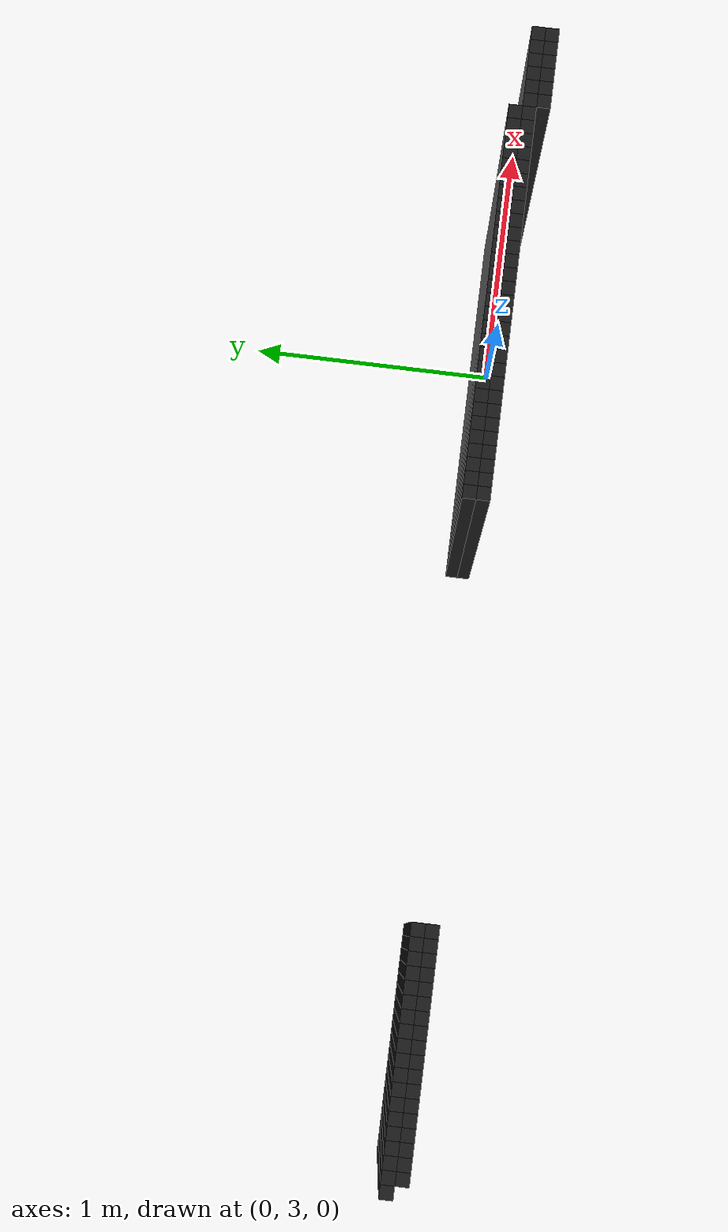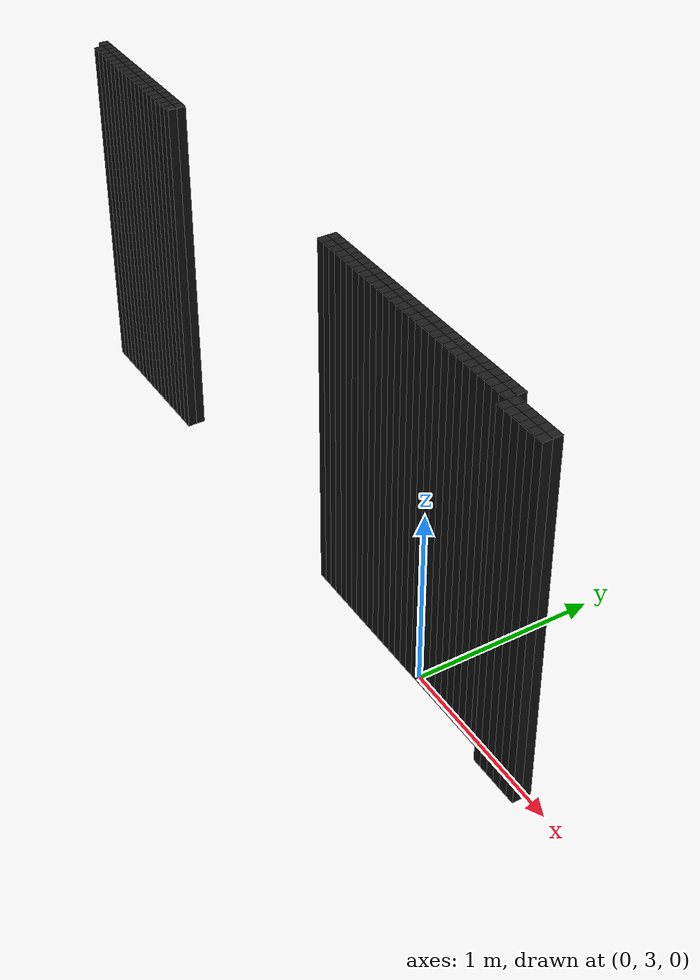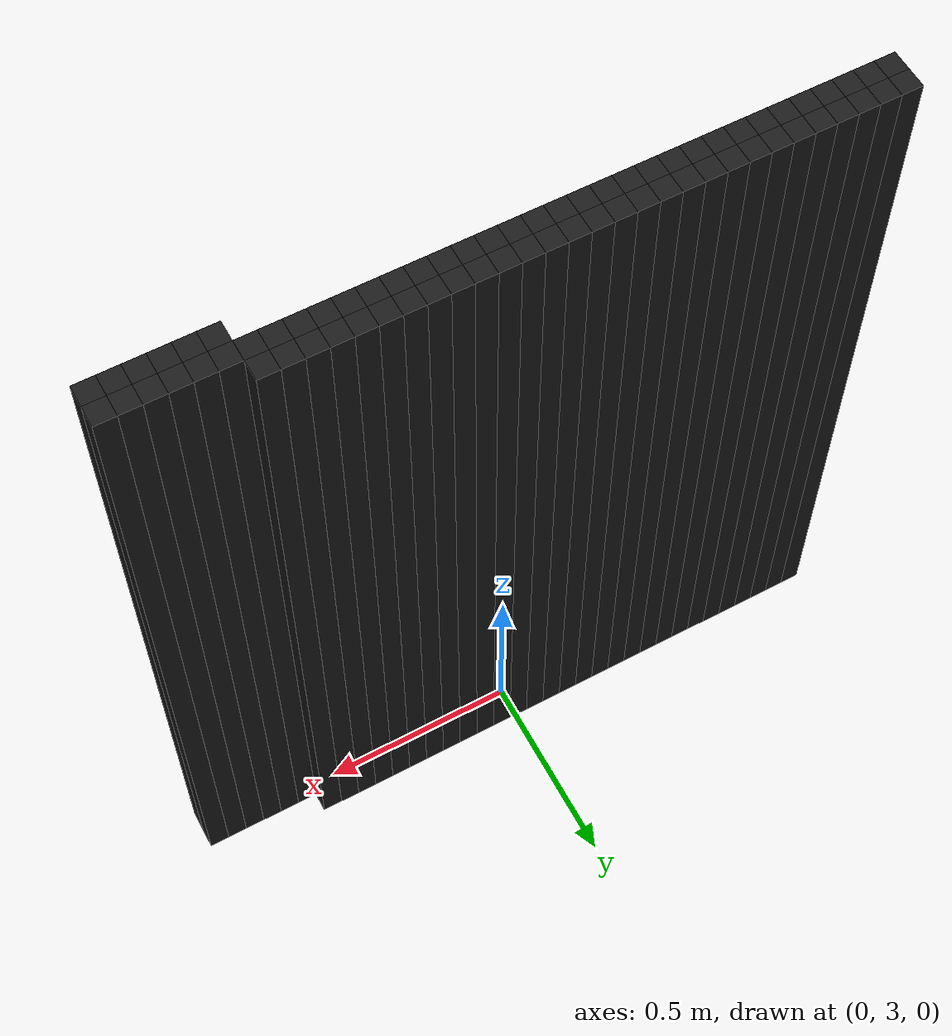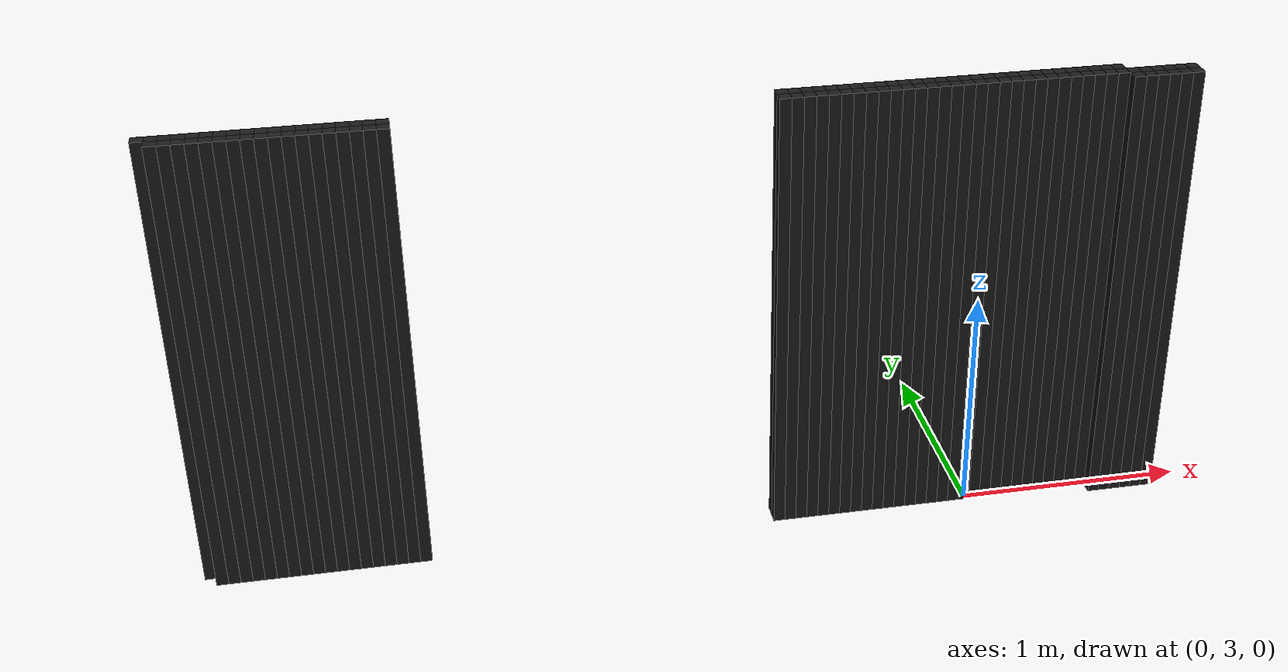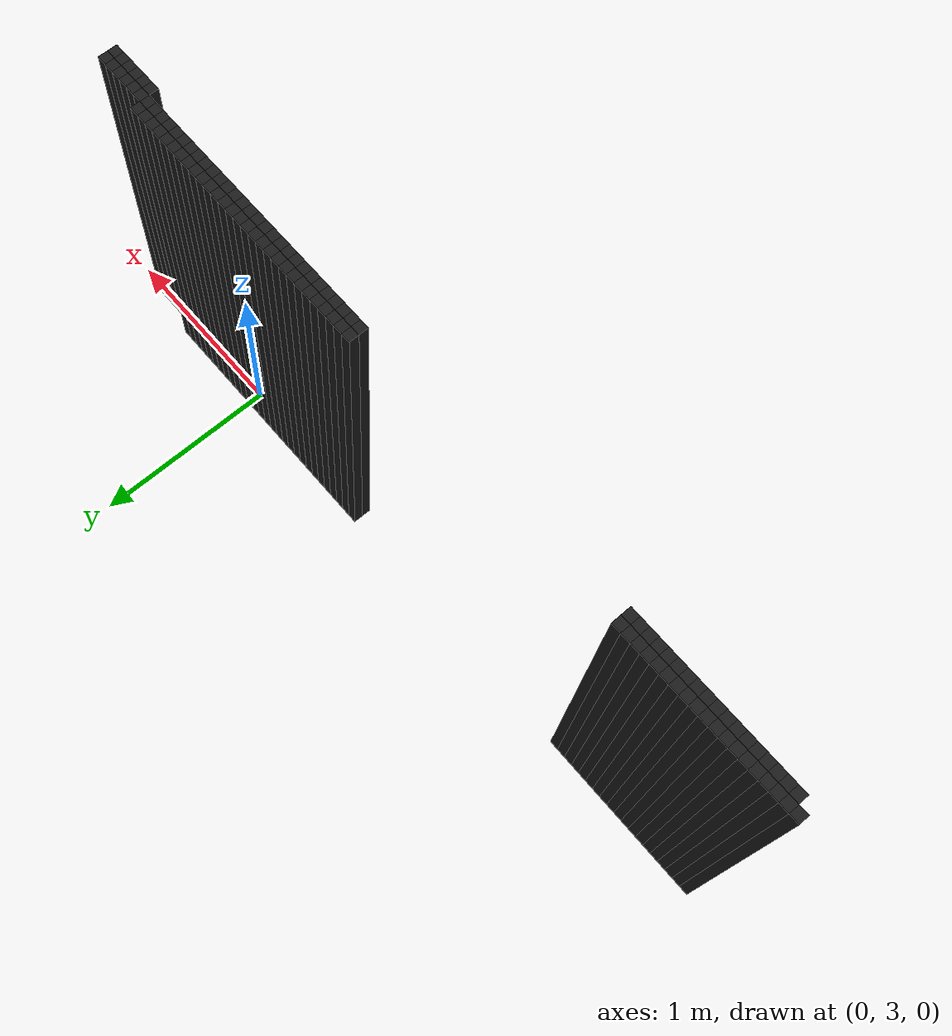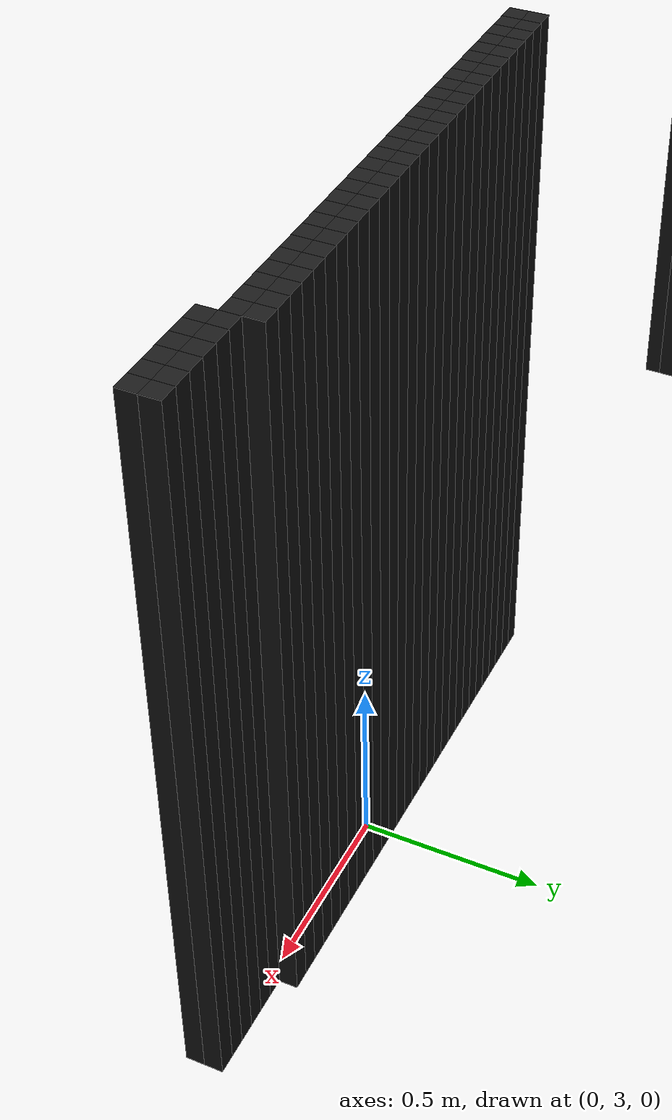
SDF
<sdf version="1.6">
 <model name="obstacle_24_106">
  <pose>-3.3099999999999996 3.05 1.0 0 0 0</pose>
  <static>true</static>
  <link name="box_link">
   <collision name="box_collision"><geometry><box><size>0.05 0.05 2.0</size></box></geometry></collision>
   <visual name="box_visual">
    <geometry><box><size>0.05 0.05 2.0</size></box></geometry>
    <material><ambient>0 0 0 1</ambient><diffuse>0.1 0.1 0.1 1</diffuse></material>
   </visual>
  </link>
 </model>
 <model name="obstacle_25_106">
  <pose>-3.26 3.05 1.0 0 0 0</pose>
  <static>true</static>
  <link name="box_link">
   <collision name="box_collision"><geometry><box><size>0.05 0.05 2.0</size></box></geometry></collision>
   <visual name="box_visual">
    <geometry><box><size>0.05 0.05 2.0</size></box></geometry>
    <material><ambient>0 0 0 1</ambient><diffuse>0.1 0.1 0.1 1</diffuse></material>
   </visual>
  </link>
 </model>
 <model name="obstacle_26_106">
  <pose>-3.21 3.05 1.0 0 0 0</pose>
  <static>true</static>
  <link name="box_link">
   <collision name="box_collision"><geometry><box><size>0.05 0.05 2.0</size></box></geometry></collision>
   <visual name="box_visual">
    <geometry><box><size>0.05 0.05 2.0</size></box></geometry>
    <material><ambient>0 0 0 1</ambient><diffuse>0.1 0.1 0.1 1</diffuse></material>
   </visual>
  </link>
 </model>
 <model name="obstacle_27_106">
  <pose>-3.1599999999999997 3.05 1.0 0 0 0</pose>
  <static>true</static>
  <link name="box_link">
   <collision name="box_collision"><geometry><box><size>0.05 0.05 2.0</size></box></geometry></collision>
   <visual name="box_visual">
    <geometry><box><size>0.05 0.05 2.0</size></box></geometry>
    <material><ambient>0 0 0 1</ambient><diffuse>0.1 0.1 0.1 1</diffuse></material>
   </visual>
  </link>
 </model>
 <model name="obstacle_28_106">
  <pose>-3.1099999999999994 3.05 1.0 0 0 0</pose>
  <static>true</static>
  <link name="box_link">
   <collision name="box_collision"><geometry><box><size>0.05 0.05 2.0</size></box></geometry></collision>
   <visual name="box_visual">
    <geometry><box><size>0.05 0.05 2.0</size></box></geometry>
    <material><ambient>0 0 0 1</ambient><diffuse>0.1 0.1 0.1 1</diffuse></material>
   </visual>
  </link>
 </model>
 <model name="obstacle_29_106">
  <pose>-3.0599999999999996 3.05 1.0 0 0 0</pose>
  <static>true</static>
  <link name="box_link">
   <collision name="box_collision"><geometry><box><size>0.05 0.05 2.0</size></box></geometry></collision>
   <visual name="box_visual">
    <geometry><box><size>0.05 0.05 2.0</size></box></geometry>
    <material><ambient>0 0 0 1</ambient><diffuse>0.1 0.1 0.1 1</diffuse></material>
   </visual>
  </link>
 </model>
 <model name="obstacle_30_106">
  <pose>-3.01 3.05 1.0 0 0 0</pose>
  <static>true</static>
  <link name="box_link">
   <collision name="box_collision"><geometry><box><size>0.05 0.05 2.0</size></box></geometry></collision>
   <visual name="box_visual">
    <geometry><box><size>0.05 0.05 2.0</size></box></geometry>
    <material><ambient>0 0 0 1</ambient><diffuse>0.1 0.1 0.1 1</diffuse></material>
   </visual>
  </link>
 </model>
 <model name="obstacle_31_106">
  <pose>-2.96 3.05 1.0 0 0 0</pose>
  <static>true</static>
  <link name="box_link">
   <collision name="box_collision"><geometry><box><size>0.05 0.05 2.0</size></box></geometry></collision>
   <visual name="box_visual">
    <geometry><box><size>0.05 0.05 2.0</size></box></geometry>
    <material><ambient>0 0 0 1</ambient><diffuse>0.1 0.1 0.1 1</diffuse></material>
   </visual>
  </link>
 </model>
 <model name="obstacle_32_106">
  <pose>-2.9099999999999997 3.05 1.0 0 0 0</pose>
  <static>true</static>
  <link name="box_link">
   <collision name="box_collision"><geometry><box><size>0.05 0.05 2.0</size></box></geometry></collision>
   <visual name="box_visual">
    <geometry><box><size>0.05 0.05 2.0</size></box></geometry>
    <material><ambient>0 0 0 1</ambient><diffuse>0.1 0.1 0.1 1</diffuse></material>
   </visual>
  </link>
 </model>
 <model name="obstacle_33_106">
  <pose>-2.8599999999999994 3.05 1.0 0 0 0</pose>
  <static>true</static>
  <link name="box_link">
   <collision name="box_collision"><geometry><box><size>0.05 0.05 2.0</size></box></geometry></collision>
   <visual name="box_visual">
    <geometry><box><size>0.05 0.05 2.0</size></box></geometry>
    <material><ambient>0 0 0 1</ambient><diffuse>0.1 0.1 0.1 1</diffuse></material>
   </visual>
  </link>
 </model>
 <model name="obstacle_34_106">
  <pose>-2.8099999999999996 3.05 1.0 0 0 0</pose>
  <static>true</static>
  <link name="box_link">
   <collision name="box_collision"><geometry><box><size>0.05 0.05 2.0</size></box></geometry></collision>
   <visual name="box_visual">
    <geometry><box><size>0.05 0.05 2.0</size></box></geometry>
    <material><ambient>0 0 0 1</ambient><diffuse>0.1 0.1 0.1 1</diffuse></material>
   </visual>
  </link>
 </model>
 <model name="obstacle_35_106">
  <pose>-2.76 3.05 1.0 0 0 0</pose>
  <static>true</static>
  <link name="box_link">
   <collision name="box_collision"><geometry><box><size>0.05 0.05 2.0</size></box></geometry></collision>
   <visual name="box_visual">
    <geometry><box><size>0.05 0.05 2.0</size></box></geometry>
    <material><ambient>0 0 0 1</ambient><diffuse>0.1 0.1 0.1 1</diffuse></material>
   </visual>
  </link>
 </model>
 <model name="obstacle_36_106">
  <pose>-2.71 3.05 1.0 0 0 0</pose>
  <static>true</static>
  <link name="box_link">
   <collision name="box_collision"><geometry><box><size>0.05 0.05 2.0</size></box></geometry></collision>
   <visual name="box_visual">
    <geometry><box><size>0.05 0.05 2.0</size></box></geometry>
    <material><ambient>0 0 0 1</ambient><diffuse>0.1 0.1 0.1 1</diffuse></material>
   </visual>
  </link>
 </model>
 <model name="obstacle_37_106">
  <pose>-2.6599999999999997 3.05 1.0 0 0 0</pose>
  <static>true</static>
  <link name="box_link">
   <collision name="box_collision"><geometry><box><size>0.05 0.05 2.0</size></box></geometry></collision>
   <visual name="box_visual">
    <geometry><box><size>0.05 0.05 2.0</size></box></geometry>
    <material><ambient>0 0 0 1</ambient><diffuse>0.1 0.1 0.1 1</diffuse></material>
   </visual>
  </link>
 </model>
 <model name="obstacle_38_106">
  <pose>-2.6099999999999994 3.05 1.0 0 0 0</pose>
  <static>true</static>
  <link name="box_link">
   <collision name="box_collision"><geometry><box><size>0.05 0.05 2.0</size></box></geometry></collision>
   <visual name="box_visual">
    <geometry><box><size>0.05 0.05 2.0</size></box></geometry>
    <material><ambient>0 0 0 1</ambient><diffuse>0.1 0.1 0.1 1</diffuse></material>
   </visual>
  </link>
 </model>
 <model name="obstacle_39_106">
  <pose>-2.5599999999999996 3.05 1.0 0 0 0</pose>
  <static>true</static>
  <link name="box_link">
   <collision name="box_collision"><geometry><box><size>0.05 0.05 2.0</size></box></geometry></collision>
   <visual name="box_visual">
    <geometry><box><size>0.05 0.05 2.0</size></box></geometry>
    <material><ambient>0 0 0 1</ambient><diffuse>0.1 0.1 0.1 1</diffuse></material>
   </visual>
  </link>
 </model>
 <model name="obstacle_40_106">
  <pose>-2.51 3.05 1.0 0 0 0</pose>
  <static>true</static>
  <link name="box_link">
   <collision name="box_collision"><geometry><box><size>0.05 0.05 2.0</size></box></geometry></collision>
   <visual name="box_visual">
    <geometry><box><size>0.05 0.05 2.0</size></box></geometry>
    <material><ambient>0 0 0 1</ambient><diffuse>0.1 0.1 0.1 1</diffuse></material>
   </visual>
  </link>
 </model>
 <model name="obstacle_41_106">
  <pose>-2.4599999999999995 3.05 1.0 0 0 0</pose>
  <static>true</static>
  <link name="box_link">
   <collision name="box_collision"><geometry><box><size>0.05 0.05 2.0</size></box></geometry></collision>
   <visual name="box_visual">
    <geometry><box><size>0.05 0.05 2.0</size></box></geometry>
    <material><ambient>0 0 0 1</ambient><diffuse>0.1 0.1 0.1 1</diffuse></material>
   </visual>
  </link>
 </model>
 <model name="obstacle_42_106">
  <pose>-2.4099999999999997 3.05 1.0 0 0 0</pose>
  <static>true</static>
  <link name="box_link">
   <collision name="box_collision"><geometry><box><size>0.05 0.05 2.0</size></box></geometry></collision>
   <visual name="box_visual">
    <geometry><box><size>0.05 0.05 2.0</size></box></geometry>
    <material><ambient>0 0 0 1</ambient><diffuse>0.1 0.1 0.1 1</diffuse></material>
   </visual>
  </link>
 </model>
 <model name="obstacle_73_106">
  <pose>-0.8599999999999994 3.05 1.0 0 0 0</pose>
  <static>true</static>
  <link name="box_link">
   <collision name="box_collision"><geometry><box><size>0.05 0.05 2.0</size></box></geometry></collision>
   <visual name="box_visual">
    <geometry><box><size>0.05 0.05 2.0</size></box></geometry>
    <material><ambient>0 0 0 1</ambient><diffuse>0.1 0.1 0.1 1</diffuse></material>
   </visual>
  </link>
 </model>
 <model name="obstacle_74_106">
  <pose>-0.8099999999999996 3.05 1.0 0 0 0</pose>
  <static>true</static>
  <link name="box_link">
   <collision name="box_collision"><geometry><box><size>0.05 0.05 2.0</size></box></geometry></collision>
   <visual name="box_visual">
    <geometry><box><size>0.05 0.05 2.0</size></box></geometry>
    <material><ambient>0 0 0 1</ambient><diffuse>0.1 0.1 0.1 1</diffuse></material>
   </visual>
  </link>
 </model>
 <model name="obstacle_75_106">
  <pose>-0.7599999999999998 3.05 1.0 0 0 0</pose>
  <static>true</static>
  <link name="box_link">
   <collision name="box_collision"><geometry><box><size>0.05 0.05 2.0</size></box></geometry></collision>
   <visual name="box_visual">
    <geometry><box><size>0.05 0.05 2.0</size></box></geometry>
    <material><ambient>0 0 0 1</ambient><diffuse>0.1 0.1 0.1 1</diffuse></material>
   </visual>
  </link>
 </model>
 <model name="obstacle_76_106">
  <pose>-0.7099999999999995 3.05 1.0 0 0 0</pose>
  <static>true</static>
  <link name="box_link">
   <collision name="box_collision"><geometry><box><size>0.05 0.05 2.0</size></box></geometry></collision>
   <visual name="box_visual">
    <geometry><box><size>0.05 0.05 2.0</size></box></geometry>
    <material><ambient>0 0 0 1</ambient><diffuse>0.1 0.1 0.1 1</diffuse></material>
   </visual>
  </link>
 </model>
 <model name="obstacle_77_106">
  <pose>-0.6599999999999997 3.05 1.0 0 0 0</pose>
  <static>true</static>
  <link name="box_link">
   <collision name="box_collision"><geometry><box><size>0.05 0.05 2.0</size></box></geometry></collision>
   <visual name="box_visual">
    <geometry><box><size>0.05 0.05 2.0</size></box></geometry>
    <material><ambient>0 0 0 1</ambient><diffuse>0.1 0.1 0.1 1</diffuse></material>
   </visual>
  </link>
 </model>
 <model name="obstacle_78_106">
  <pose>-0.6099999999999994 3.05 1.0 0 0 0</pose>
  <static>true</static>
  <link name="box_link">
   <collision name="box_collision"><geometry><box><size>0.05 0.05 2.0</size></box></geometry></collision>
   <visual name="box_visual">
    <geometry><box><size>0.05 0.05 2.0</size></box></geometry>
    <material><ambient>0 0 0 1</ambient><diffuse>0.1 0.1 0.1 1</diffuse></material>
   </visual>
  </link>
 </model>
 <model name="obstacle_79_106">
  <pose>-0.5599999999999996 3.05 1.0 0 0 0</pose>
  <static>true</static>
  <link name="box_link">
   <collision name="box_collision"><geometry><box><size>0.05 0.05 2.0</size></box></geometry></collision>
   <visual name="box_visual">
    <geometry><box><size>0.05 0.05 2.0</size></box></geometry>
    <material><ambient>0 0 0 1</ambient><diffuse>0.1 0.1 0.1 1</diffuse></material>
   </visual>
  </link>
 </model>
 <model name="obstacle_80_106">
  <pose>-0.5099999999999998 3.05 1.0 0 0 0</pose>
  <static>true</static>
  <link name="box_link">
   <collision name="box_collision"><geometry><box><size>0.05 0.05 2.0</size></box></geometry></collision>
   <visual name="box_visual">
    <geometry><box><size>0.05 0.05 2.0</size></box></geometry>
    <material><ambient>0 0 0 1</ambient><diffuse>0.1 0.1 0.1 1</diffuse></material>
   </visual>
  </link>
 </model>
 <model name="obstacle_81_106">
  <pose>-0.45999999999999996 3.05 1.0 0 0 0</pose>
  <static>true</static>
  <link name="box_link">
   <collision name="box_collision"><geometry><box><size>0.05 0.05 2.0</size></box></geometry></collision>
   <visual name="box_visual">
    <geometry><box><size>0.05 0.05 2.0</size></box></geometry>
    <material><ambient>0 0 0 1</ambient><diffuse>0.1 0.1 0.1 1</diffuse></material>
   </visual>
  </link>
 </model>
 <model name="obstacle_82_106">
  <pose>-0.40999999999999925 3.05 1.0 0 0 0</pose>
  <static>true</static>
  <link name="box_link">
   <collision name="box_collision"><geometry><box><size>0.05 0.05 2.0</size></box></geometry></collision>
   <visual name="box_visual">
    <geometry><box><size>0.05 0.05 2.0</size></box></geometry>
    <material><ambient>0 0 0 1</ambient><diffuse>0.1 0.1 0.1 1</diffuse></material>
   </visual>
  </link>
 </model>
 <model name="obstacle_83_106">
  <pose>-0.35999999999999943 3.05 1.0 0 0 0</pose>
  <static>true</static>
  <link name="box_link">
   <collision name="box_collision"><geometry><box><size>0.05 0.05 2.0</size></box></geometry></collision>
   <visual name="box_visual">
    <geometry><box><size>0.05 0.05 2.0</size></box></geometry>
    <material><ambient>0 0 0 1</ambient><diffuse>0.1 0.1 0.1 1</diffuse></material>
   </visual>
  </link>
 </model>
 <model name="obstacle_84_106">
  <pose>-0.3099999999999996 3.05 1.0 0 0 0</pose>
  <static>true</static>
  <link name="box_link">
   <collision name="box_collision"><geometry><box><size>0.05 0.05 2.0</size></box></geometry></collision>
   <visual name="box_visual">
    <geometry><box><size>0.05 0.05 2.0</size></box></geometry>
    <material><ambient>0 0 0 1</ambient><diffuse>0.1 0.1 0.1 1</diffuse></material>
   </visual>
  </link>
 </model>
 <model name="obstacle_85_106">
  <pose>-0.2599999999999998 3.05 1.0 0 0 0</pose>
  <static>true</static>
  <link name="box_link">
   <collision name="box_collision"><geometry><box><size>0.05 0.05 2.0</size></box></geometry></collision>
   <visual name="box_visual">
    <geometry><box><size>0.05 0.05 2.0</size></box></geometry>
    <material><ambient>0 0 0 1</ambient><diffuse>0.1 0.1 0.1 1</diffuse></material>
   </visual>
  </link>
 </model>
 <model name="obstacle_86_106">
  <pose>-0.20999999999999996 3.05 1.0 0 0 0</pose>
  <static>true</static>
  <link name="box_link">
   <collision name="box_collision"><geometry><box><size>0.05 0.05 2.0</size></box></geometry></collision>
   <visual name="box_visual">
    <geometry><box><size>0.05 0.05 2.0</size></box></geometry>
    <material><ambient>0 0 0 1</ambient><diffuse>0.1 0.1 0.1 1</diffuse></material>
   </visual>
  </link>
 </model>
 <model name="obstacle_87_106">
  <pose>-0.15999999999999925 3.05 1.0 0 0 0</pose>
  <static>true</static>
  <link name="box_link">
   <collision name="box_collision"><geometry><box><size>0.05 0.05 2.0</size></box></geometry></collision>
   <visual name="box_visual">
    <geometry><box><size>0.05 0.05 2.0</size></box></geometry>
    <material><ambient>0 0 0 1</ambient><diffuse>0.1 0.1 0.1 1</diffuse></material>
   </visual>
  </link>
 </model>
 <model name="obstacle_88_106">
  <pose>-0.10999999999999943 3.05 1.0 0 0 0</pose>
  <static>true</static>
  <link name="box_link">
   <collision name="box_collision"><geometry><box><size>0.05 0.05 2.0</size></box></geometry></collision>
   <visual name="box_visual">
    <geometry><box><size>0.05 0.05 2.0</size></box></geometry>
    <material><ambient>0 0 0 1</ambient><diffuse>0.1 0.1 0.1 1</diffuse></material>
   </visual>
  </link>
 </model>
 <model name="obstacle_89_106">
  <pose>-0.05999999999999961 3.05 1.0 0 0 0</pose>
  <static>true</static>
  <link name="box_link">
   <collision name="box_collision"><geometry><box><size>0.05 0.05 2.0</size></box></geometry></collision>
   <visual name="box_visual">
    <geometry><box><size>0.05 0.05 2.0</size></box></geometry>
    <material><ambient>0 0 0 1</ambient><diffuse>0.1 0.1 0.1 1</diffuse></material>
   </visual>
  </link>
 </model>
 <model name="obstacle_90_106">
  <pose>-0.009999999999999787 3.05 1.0 0 0 0</pose>
  <static>true</static>
  <link name="box_link">
   <collision name="box_collision"><geometry><box><size>0.05 0.05 2.0</size></box></geometry></collision>
   <visual name="box_visual">
    <geometry><box><size>0.05 0.05 2.0</size></box></geometry>
    <material><ambient>0 0 0 1</ambient><diffuse>0.1 0.1 0.1 1</diffuse></material>
   </visual>
  </link>
 </model>
 <model name="obstacle_91_106">
  <pose>0.040000000000000036 3.05 1.0 0 0 0</pose>
  <static>true</static>
  <link name="box_link">
   <collision name="box_collision"><geometry><box><size>0.05 0.05 2.0</size></box></geometry></collision>
   <visual name="box_visual">
    <geometry><box><size>0.05 0.05 2.0</size></box></geometry>
    <material><ambient>0 0 0 1</ambient><diffuse>0.1 0.1 0.1 1</diffuse></material>
   </visual>
  </link>
 </model>
 <model name="obstacle_92_106">
  <pose>0.09000000000000075 3.05 1.0 0 0 0</pose>
  <static>true</static>
  <link name="box_link">
   <collision name="box_collision"><geometry><box><size>0.05 0.05 2.0</size></box></geometry></collision>
   <visual name="box_visual">
    <geometry><box><size>0.05 0.05 2.0</size></box></geometry>
    <material><ambient>0 0 0 1</ambient><diffuse>0.1 0.1 0.1 1</diffuse></material>
   </visual>
  </link>
 </model>
 <model name="obstacle_93_106">
  <pose>0.14000000000000057 3.05 1.0 0 0 0</pose>
  <static>true</static>
  <link name="box_link">
   <collision name="box_collision"><geometry><box><size>0.05 0.05 2.0</size></box></geometry></collision>
   <visual name="box_visual">
    <geometry><box><size>0.05 0.05 2.0</size></box></geometry>
    <material><ambient>0 0 0 1</ambient><diffuse>0.1 0.1 0.1 1</diffuse></material>
   </visual>
  </link>
 </model>
 <model name="obstacle_94_106">
  <pose>0.1900000000000004 3.05 1.0 0 0 0</pose>
  <static>true</static>
  <link name="box_link">
   <collision name="box_collision"><geometry><box><size>0.05 0.05 2.0</size></box></geometry></collision>
   <visual name="box_visual">
    <geometry><box><size>0.05 0.05 2.0</size></box></geometry>
    <material><ambient>0 0 0 1</ambient><diffuse>0.1 0.1 0.1 1</diffuse></material>
   </visual>
  </link>
 </model>
 <model name="obstacle_95_106">
  <pose>0.2400000000000002 3.05 1.0 0 0 0</pose>
  <static>true</static>
  <link name="box_link">
   <collision name="box_collision"><geometry><box><size>0.05 0.05 2.0</size></box></geometry></collision>
   <visual name="box_visual">
    <geometry><box><size>0.05 0.05 2.0</size></box></geometry>
    <material><ambient>0 0 0 1</ambient><diffuse>0.1 0.1 0.1 1</diffuse></material>
   </visual>
  </link>
 </model>
 <model name="obstacle_96_106">
  <pose>0.2900000000000009 3.05 1.0 0 0 0</pose>
  <static>true</static>
  <link name="box_link">
   <collision name="box_collision"><geometry><box><size>0.05 0.05 2.0</size></box></geometry></collision>
   <visual name="box_visual">
    <geometry><box><size>0.05 0.05 2.0</size></box></geometry>
    <material><ambient>0 0 0 1</ambient><diffuse>0.1 0.1 0.1 1</diffuse></material>
   </visual>
  </link>
 </model>
 <model name="obstacle_97_106">
  <pose>0.34000000000000075 3.05 1.0 0 0 0</pose>
  <static>true</static>
  <link name="box_link">
   <collision name="box_collision"><geometry><box><size>0.05 0.05 2.0</size></box></geometry></collision>
   <visual name="box_visual">
    <geometry><box><size>0.05 0.05 2.0</size></box></geometry>
    <material><ambient>0 0 0 1</ambient><diffuse>0.1 0.1 0.1 1</diffuse></material>
   </visual>
  </link>
 </model>
 <model name="obstacle_98_106">
  <pose>0.39000000000000057 3.05 1.0 0 0 0</pose>
  <static>true</static>
  <link name="box_link">
   <collision name="box_collision"><geometry><box><size>0.05 0.05 2.0</size></box></geometry></collision>
   <visual name="box_visual">
    <geometry><box><size>0.05 0.05 2.0</size></box></geometry>
    <material><ambient>0 0 0 1</ambient><diffuse>0.1 0.1 0.1 1</diffuse></material>
   </visual>
  </link>
 </model>
 <model name="obstacle_99_106">
  <pose>0.4400000000000004 3.05 1.0 0 0 0</pose>
  <static>true</static>
  <link name="box_link">
   <collision name="box_collision"><geometry><box><size>0.05 0.05 2.0</size></box></geometry></collision>
   <visual name="box_visual">
    <geometry><box><size>0.05 0.05 2.0</size></box></geometry>
    <material><ambient>0 0 0 1</ambient><diffuse>0.1 0.1 0.1 1</diffuse></material>
   </visual>
  </link>
 </model>
 <model name="obstacle_100_106">
  <pose>0.4900000000000002 3.05 1.0 0 0 0</pose>
  <static>true</static>
  <link name="box_link">
   <collision name="box_collision"><geometry><box><size>0.05 0.05 2.0</size></box></geometry></collision>
   <visual name="box_visual">
    <geometry><box><size>0.05 0.05 2.0</size></box></geometry>
    <material><ambient>0 0 0 1</ambient><diffuse>0.1 0.1 0.1 1</diffuse></material>
   </visual>
  </link>
 </model>
 <model name="obstacle_101_106">
  <pose>0.5400000000000009 3.05 1.0 0 0 0</pose>
  <static>true</static>
  <link name="box_link">
   <collision name="box_collision"><geometry><box><size>0.05 0.05 2.0</size></box></geometry></collision>
   <visual name="box_visual">
    <geometry><box><size>0.05 0.05 2.0</size></box></geometry>
    <material><ambient>0 0 0 1</ambient><diffuse>0.1 0.1 0.1 1</diffuse></material>
   </visual>
  </link>
 </model>
 <model name="obstacle_25_107">
  <pose>-3.26 3.0 1.0 0 0 0</pose>
  <static>true</static>
  <link name="box_link">
   <collision name="box_collision"><geometry><box><size>0.05 0.05 2.0</size></box></geometry></collision>
   <visual name="box_visual">
    <geometry><box><size>0.05 0.05 2.0</size></box></geometry>
    <material><ambient>0 0 0 1</ambient><diffuse>0.1 0.1 0.1 1</diffuse></material>
   </visual>
  </link>
 </model>
 <model name="obstacle_26_107">
  <pose>-3.21 3.0 1.0 0 0 0</pose>
  <static>true</static>
  <link name="box_link">
   <collision name="box_collision"><geometry><box><size>0.05 0.05 2.0</size></box></geometry></collision>
   <visual name="box_visual">
    <geometry><box><size>0.05 0.05 2.0</size></box></geometry>
    <material><ambient>0 0 0 1</ambient><diffuse>0.1 0.1 0.1 1</diffuse></material>
   </visual>
  </link>
 </model>
 <model name="obstacle_27_107">
  <pose>-3.1599999999999997 3.0 1.0 0 0 0</pose>
  <static>true</static>
  <link name="box_link">
   <collision name="box_collision"><geometry><box><size>0.05 0.05 2.0</size></box></geometry></collision>
   <visual name="box_visual">
    <geometry><box><size>0.05 0.05 2.0</size></box></geometry>
    <material><ambient>0 0 0 1</ambient><diffuse>0.1 0.1 0.1 1</diffuse></material>
   </visual>
  </link>
 </model>
 <model name="obstacle_28_107">
  <pose>-3.1099999999999994 3.0 1.0 0 0 0</pose>
  <static>true</static>
  <link name="box_link">
   <collision name="box_collision"><geometry><box><size>0.05 0.05 2.0</size></box></geometry></collision>
   <visual name="box_visual">
    <geometry><box><size>0.05 0.05 2.0</size></box></geometry>
    <material><ambient>0 0 0 1</ambient><diffuse>0.1 0.1 0.1 1</diffuse></material>
   </visual>
  </link>
 </model>
 <model name="obstacle_29_107">
  <pose>-3.0599999999999996 3.0 1.0 0 0 0</pose>
  <static>true</static>
  <link name="box_link">
   <collision name="box_collision"><geometry><box><size>0.05 0.05 2.0</size></box></geometry></collision>
   <visual name="box_visual">
    <geometry><box><size>0.05 0.05 2.0</size></box></geometry>
    <material><ambient>0 0 0 1</ambient><diffuse>0.1 0.1 0.1 1</diffuse></material>
   </visual>
  </link>
 </model>
 <model name="obstacle_30_107">
  <pose>-3.01 3.0 1.0 0 0 0</pose>
  <static>true</static>
  <link name="box_link">
   <collision name="box_collision"><geometry><box><size>0.05 0.05 2.0</size></box></geometry></collision>
   <visual name="box_visual">
    <geometry><box><size>0.05 0.05 2.0</size></box></geometry>
    <material><ambient>0 0 0 1</ambient><diffuse>0.1 0.1 0.1 1</diffuse></material>
   </visual>
  </link>
 </model>
 <model name="obstacle_31_107">
  <pose>-2.96 3.0 1.0 0 0 0</pose>
  <static>true</static>
  <link name="box_link">
   <collision name="box_collision"><geometry><box><size>0.05 0.05 2.0</size></box></geometry></collision>
   <visual name="box_visual">
    <geometry><box><size>0.05 0.05 2.0</size></box></geometry>
    <material><ambient>0 0 0 1</ambient><diffuse>0.1 0.1 0.1 1</diffuse></material>
   </visual>
  </link>
 </model>
 <model name="obstacle_32_107">
  <pose>-2.9099999999999997 3.0 1.0 0 0 0</pose>
  <static>true</static>
  <link name="box_link">
   <collision name="box_collision"><geometry><box><size>0.05 0.05 2.0</size></box></geometry></collision>
   <visual name="box_visual">
    <geometry><box><size>0.05 0.05 2.0</size></box></geometry>
    <material><ambient>0 0 0 1</ambient><diffuse>0.1 0.1 0.1 1</diffuse></material>
   </visual>
  </link>
 </model>
 <model name="obstacle_33_107">
  <pose>-2.8599999999999994 3.0 1.0 0 0 0</pose>
  <static>true</static>
  <link name="box_link">
   <collision name="box_collision"><geometry><box><size>0.05 0.05 2.0</size></box></geometry></collision>
   <visual name="box_visual">
    <geometry><box><size>0.05 0.05 2.0</size></box></geometry>
    <material><ambient>0 0 0 1</ambient><diffuse>0.1 0.1 0.1 1</diffuse></material>
   </visual>
  </link>
 </model>
 <model name="obstacle_34_107">
  <pose>-2.8099999999999996 3.0 1.0 0 0 0</pose>
  <static>true</static>
  <link name="box_link">
   <collision name="box_collision"><geometry><box><size>0.05 0.05 2.0</size></box></geometry></collision>
   <visual name="box_visual">
    <geometry><box><size>0.05 0.05 2.0</size></box></geometry>
    <material><ambient>0 0 0 1</ambient><diffuse>0.1 0.1 0.1 1</diffuse></material>
   </visual>
  </link>
 </model>
 <model name="obstacle_35_107">
  <pose>-2.76 3.0 1.0 0 0 0</pose>
  <static>true</static>
  <link name="box_link">
   <collision name="box_collision"><geometry><box><size>0.05 0.05 2.0</size></box></geometry></collision>
   <visual name="box_visual">
    <geometry><box><size>0.05 0.05 2.0</size></box></geometry>
    <material><ambient>0 0 0 1</ambient><diffuse>0.1 0.1 0.1 1</diffuse></material>
   </visual>
  </link>
 </model>
 <model name="obstacle_36_107">
  <pose>-2.71 3.0 1.0 0 0 0</pose>
  <static>true</static>
  <link name="box_link">
   <collision name="box_collision"><geometry><box><size>0.05 0.05 2.0</size></box></geometry></collision>
   <visual name="box_visual">
    <geometry><box><size>0.05 0.05 2.0</size></box></geometry>
    <material><ambient>0 0 0 1</ambient><diffuse>0.1 0.1 0.1 1</diffuse></material>
   </visual>
  </link>
 </model>
 <model name="obstacle_37_107">
  <pose>-2.6599999999999997 3.0 1.0 0 0 0</pose>
  <static>true</static>
  <link name="box_link">
   <collision name="box_collision"><geometry><box><size>0.05 0.05 2.0</size></box></geometry></collision>
   <visual name="box_visual">
    <geometry><box><size>0.05 0.05 2.0</size></box></geometry>
    <material><ambient>0 0 0 1</ambient><diffuse>0.1 0.1 0.1 1</diffuse></material>
   </visual>
  </link>
 </model>
 <model name="obstacle_38_107">
  <pose>-2.6099999999999994 3.0 1.0 0 0 0</pose>
  <static>true</static>
  <link name="box_link">
   <collision name="box_collision"><geometry><box><size>0.05 0.05 2.0</size></box></geometry></collision>
   <visual name="box_visual">
    <geometry><box><size>0.05 0.05 2.0</size></box></geometry>
    <material><ambient>0 0 0 1</ambient><diffuse>0.1 0.1 0.1 1</diffuse></material>
   </visual>
  </link>
 </model>
 <model name="obstacle_39_107">
  <pose>-2.5599999999999996 3.0 1.0 0 0 0</pose>
  <static>true</static>
  <link name="box_link">
   <collision name="box_collision"><geometry><box><size>0.05 0.05 2.0</size></box></geometry></collision>
   <visual name="box_visual">
    <geometry><box><size>0.05 0.05 2.0</size></box></geometry>
    <material><ambient>0 0 0 1</ambient><diffuse>0.1 0.1 0.1 1</diffuse></material>
   </visual>
  </link>
 </model>
 <model name="obstacle_40_107">
  <pose>-2.51 3.0 1.0 0 0 0</pose>
  <static>true</static>
  <link name="box_link">
   <collision name="box_collision"><geometry><box><size>0.05 0.05 2.0</size></box></geometry></collision>
   <visual name="box_visual">
    <geometry><box><size>0.05 0.05 2.0</size></box></geometry>
    <material><ambient>0 0 0 1</ambient><diffuse>0.1 0.1 0.1 1</diffuse></material>
   </visual>
  </link>
 </model>
 <model name="obstacle_41_107">
  <pose>-2.4599999999999995 3.0 1.0 0 0 0</pose>
  <static>true</static>
  <link name="box_link">
   <collision name="box_collision"><geometry><box><size>0.05 0.05 2.0</size></box></geometry></collision>
   <visual name="box_visual">
    <geometry><box><size>0.05 0.05 2.0</size></box></geometry>
    <material><ambient>0 0 0 1</ambient><diffuse>0.1 0.1 0.1 1</diffuse></material>
   </visual>
  </link>
 </model>
 <model name="obstacle_42_107">
  <pose>-2.4099999999999997 3.0 1.0 0 0 0</pose>
  <static>true</static>
  <link name="box_link">
   <collision name="box_collision"><geometry><box><size>0.05 0.05 2.0</size></box></geometry></collision>
   <visual name="box_visual">
    <geometry><box><size>0.05 0.05 2.0</size></box></geometry>
    <material><ambient>0 0 0 1</ambient><diffuse>0.1 0.1 0.1 1</diffuse></material>
   </visual>
  </link>
 </model>
 <model name="obstacle_73_107">
  <pose>-0.8599999999999994 3.0 1.0 0 0 0</pose>
  <static>true</static>
  <link name="box_link">
   <collision name="box_collision"><geometry><box><size>0.05 0.05 2.0</size></box></geometry></collision>
   <visual name="box_visual">
    <geometry><box><size>0.05 0.05 2.0</size></box></geometry>
    <material><ambient>0 0 0 1</ambient><diffuse>0.1 0.1 0.1 1</diffuse></material>
   </visual>
  </link>
 </model>
 <model name="obstacle_74_107">
  <pose>-0.8099999999999996 3.0 1.0 0 0 0</pose>
  <static>true</static>
  <link name="box_link">
   <collision name="box_collision"><geometry><box><size>0.05 0.05 2.0</size></box></geometry></collision>
   <visual name="box_visual">
    <geometry><box><size>0.05 0.05 2.0</size></box></geometry>
    <material><ambient>0 0 0 1</ambient><diffuse>0.1 0.1 0.1 1</diffuse></material>
   </visual>
  </link>
 </model>
 <model name="obstacle_75_107">
  <pose>-0.7599999999999998 3.0 1.0 0 0 0</pose>
  <static>true</static>
  <link name="box_link">
   <collision name="box_collision"><geometry><box><size>0.05 0.05 2.0</size></box></geometry></collision>
   <visual name="box_visual">
    <geometry><box><size>0.05 0.05 2.0</size></box></geometry>
    <material><ambient>0 0 0 1</ambient><diffuse>0.1 0.1 0.1 1</diffuse></material>
   </visual>
  </link>
 </model>
 <model name="obstacle_76_107">
  <pose>-0.7099999999999995 3.0 1.0 0 0 0</pose>
  <static>true</static>
  <link name="box_link">
   <collision name="box_collision"><geometry><box><size>0.05 0.05 2.0</size></box></geometry></collision>
   <visual name="box_visual">
    <geometry><box><size>0.05 0.05 2.0</size></box></geometry>
    <material><ambient>0 0 0 1</ambient><diffuse>0.1 0.1 0.1 1</diffuse></material>
   </visual>
  </link>
 </model>
 <model name="obstacle_77_107">
  <pose>-0.6599999999999997 3.0 1.0 0 0 0</pose>
  <static>true</static>
  <link name="box_link">
   <collision name="box_collision"><geometry><box><size>0.05 0.05 2.0</size></box></geometry></collision>
   <visual name="box_visual">
    <geometry><box><size>0.05 0.05 2.0</size></box></geometry>
    <material><ambient>0 0 0 1</ambient><diffuse>0.1 0.1 0.1 1</diffuse></material>
   </visual>
  </link>
 </model>
 <model name="obstacle_78_107">
  <pose>-0.6099999999999994 3.0 1.0 0 0 0</pose>
  <static>true</static>
  <link name="box_link">
   <collision name="box_collision"><geometry><box><size>0.05 0.05 2.0</size></box></geometry></collision>
   <visual name="box_visual">
    <geometry><box><size>0.05 0.05 2.0</size></box></geometry>
    <material><ambient>0 0 0 1</ambient><diffuse>0.1 0.1 0.1 1</diffuse></material>
   </visual>
  </link>
 </model>
 <model name="obstacle_79_107">
  <pose>-0.5599999999999996 3.0 1.0 0 0 0</pose>
  <static>true</static>
  <link name="box_link">
   <collision name="box_collision"><geometry><box><size>0.05 0.05 2.0</size></box></geometry></collision>
   <visual name="box_visual">
    <geometry><box><size>0.05 0.05 2.0</size></box></geometry>
    <material><ambient>0 0 0 1</ambient><diffuse>0.1 0.1 0.1 1</diffuse></material>
   </visual>
  </link>
 </model>
 <model name="obstacle_80_107">
  <pose>-0.5099999999999998 3.0 1.0 0 0 0</pose>
  <static>true</static>
  <link name="box_link">
   <collision name="box_collision"><geometry><box><size>0.05 0.05 2.0</size></box></geometry></collision>
   <visual name="box_visual">
    <geometry><box><size>0.05 0.05 2.0</size></box></geometry>
    <material><ambient>0 0 0 1</ambient><diffuse>0.1 0.1 0.1 1</diffuse></material>
   </visual>
  </link>
 </model>
 <model name="obstacle_81_107">
  <pose>-0.45999999999999996 3.0 1.0 0 0 0</pose>
  <static>true</static>
  <link name="box_link">
   <collision name="box_collision"><geometry><box><size>0.05 0.05 2.0</size></box></geometry></collision>
   <visual name="box_visual">
    <geometry><box><size>0.05 0.05 2.0</size></box></geometry>
    <material><ambient>0 0 0 1</ambient><diffuse>0.1 0.1 0.1 1</diffuse></material>
   </visual>
  </link>
 </model>
 <model name="obstacle_82_107">
  <pose>-0.40999999999999925 3.0 1.0 0 0 0</pose>
  <static>true</static>
  <link name="box_link">
   <collision name="box_collision"><geometry><box><size>0.05 0.05 2.0</size></box></geometry></collision>
   <visual name="box_visual">
    <geometry><box><size>0.05 0.05 2.0</size></box></geometry>
    <material><ambient>0 0 0 1</ambient><diffuse>0.1 0.1 0.1 1</diffuse></material>
   </visual>
  </link>
 </model>
 <model name="obstacle_83_107">
  <pose>-0.35999999999999943 3.0 1.0 0 0 0</pose>
  <static>true</static>
  <link name="box_link">
   <collision name="box_collision"><geometry><box><size>0.05 0.05 2.0</size></box></geometry></collision>
   <visual name="box_visual">
    <geometry><box><size>0.05 0.05 2.0</size></box></geometry>
    <material><ambient>0 0 0 1</ambient><diffuse>0.1 0.1 0.1 1</diffuse></material>
   </visual>
  </link>
 </model>
 <model name="obstacle_84_107">
  <pose>-0.3099999999999996 3.0 1.0 0 0 0</pose>
  <static>true</static>
  <link name="box_link">
   <collision name="box_collision"><geometry><box><size>0.05 0.05 2.0</size></box></geometry></collision>
   <visual name="box_visual">
    <geometry><box><size>0.05 0.05 2.0</size></box></geometry>
    <material><ambient>0 0 0 1</ambient><diffuse>0.1 0.1 0.1 1</diffuse></material>
   </visual>
  </link>
 </model>
 <model name="obstacle_85_107">
  <pose>-0.2599999999999998 3.0 1.0 0 0 0</pose>
  <static>true</static>
  <link name="box_link">
   <collision name="box_collision"><geometry><box><size>0.05 0.05 2.0</size></box></geometry></collision>
   <visual name="box_visual">
    <geometry><box><size>0.05 0.05 2.0</size></box></geometry>
    <material><ambient>0 0 0 1</ambient><diffuse>0.1 0.1 0.1 1</diffuse></material>
   </visual>
  </link>
 </model>
 <model name="obstacle_86_107">
  <pose>-0.20999999999999996 3.0 1.0 0 0 0</pose>
  <static>true</static>
  <link name="box_link">
   <collision name="box_collision"><geometry><box><size>0.05 0.05 2.0</size></box></geometry></collision>
   <visual name="box_visual">
    <geometry><box><size>0.05 0.05 2.0</size></box></geometry>
    <material><ambient>0 0 0 1</ambient><diffuse>0.1 0.1 0.1 1</diffuse></material>
   </visual>
  </link>
 </model>
 <model name="obstacle_87_107">
  <pose>-0.15999999999999925 3.0 1.0 0 0 0</pose>
  <static>true</static>
  <link name="box_link">
   <collision name="box_collision"><geometry><box><size>0.05 0.05 2.0</size></box></geometry></collision>
   <visual name="box_visual">
    <geometry><box><size>0.05 0.05 2.0</size></box></geometry>
    <material><ambient>0 0 0 1</ambient><diffuse>0.1 0.1 0.1 1</diffuse></material>
   </visual>
  </link>
 </model>
 <model name="obstacle_88_107">
  <pose>-0.10999999999999943 3.0 1.0 0 0 0</pose>
  <static>true</static>
  <link name="box_link">
   <collision name="box_collision"><geometry><box><size>0.05 0.05 2.0</size></box></geometry></collision>
   <visual name="box_visual">
    <geometry><box><size>0.05 0.05 2.0</size></box></geometry>
    <material><ambient>0 0 0 1</ambient><diffuse>0.1 0.1 0.1 1</diffuse></material>
   </visual>
  </link>
 </model>
 <model name="obstacle_89_107">
  <pose>-0.05999999999999961 3.0 1.0 0 0 0</pose>
  <static>true</static>
  <link name="box_link">
   <collision name="box_collision"><geometry><box><size>0.05 0.05 2.0</size></box></geometry></collision>
   <visual name="box_visual">
    <geometry><box><size>0.05 0.05 2.0</size></box></geometry>
    <material><ambient>0 0 0 1</ambient><diffuse>0.1 0.1 0.1 1</diffuse></material>
   </visual>
  </link>
 </model>
 <model name="obstacle_90_107">
  <pose>-0.009999999999999787 3.0 1.0 0 0 0</pose>
  <static>true</static>
  <link name="box_link">
   <collision name="box_collision"><geometry><box><size>0.05 0.05 2.0</size></box></geometry></collision>
   <visual name="box_visual">
    <geometry><box><size>0.05 0.05 2.0</size></box></geometry>
    <material><ambient>0 0 0 1</ambient><diffuse>0.1 0.1 0.1 1</diffuse></material>
   </visual>
  </link>
 </model>
 <model name="obstacle_91_107">
  <pose>0.040000000000000036 3.0 1.0 0 0 0</pose>
  <static>true</static>
  <link name="box_link">
   <collision name="box_collision"><geometry><box><size>0.05 0.05 2.0</size></box></geometry></collision>
   <visual name="box_visual">
    <geometry><box><size>0.05 0.05 2.0</size></box></geometry>
    <material><ambient>0 0 0 1</ambient><diffuse>0.1 0.1 0.1 1</diffuse></material>
   </visual>
  </link>
 </model>
 <model name="obstacle_92_107">
  <pose>0.09000000000000075 3.0 1.0 0 0 0</pose>
  <static>true</static>
  <link name="box_link">
   <collision name="box_collision"><geometry><box><size>0.05 0.05 2.0</size></box></geometry></collision>
   <visual name="box_visual">
    <geometry><box><size>0.05 0.05 2.0</size></box></geometry>
    <material><ambient>0 0 0 1</ambient><diffuse>0.1 0.1 0.1 1</diffuse></material>
   </visual>
  </link>
 </model>
 <model name="obstacle_93_107">
  <pose>0.14000000000000057 3.0 1.0 0 0 0</pose>
  <static>true</static>
  <link name="box_link">
   <collision name="box_collision"><geometry><box><size>0.05 0.05 2.0</size></box></geometry></collision>
   <visual name="box_visual">
    <geometry><box><size>0.05 0.05 2.0</size></box></geometry>
    <material><ambient>0 0 0 1</ambient><diffuse>0.1 0.1 0.1 1</diffuse></material>
   </visual>
  </link>
 </model>
 <model name="obstacle_94_107">
  <pose>0.1900000000000004 3.0 1.0 0 0 0</pose>
  <static>true</static>
  <link name="box_link">
   <collision name="box_collision"><geometry><box><size>0.05 0.05 2.0</size></box></geometry></collision>
   <visual name="box_visual">
    <geometry><box><size>0.05 0.05 2.0</size></box></geometry>
    <material><ambient>0 0 0 1</ambient><diffuse>0.1 0.1 0.1 1</diffuse></material>
   </visual>
  </link>
 </model>
 <model name="obstacle_95_107">
  <pose>0.2400000000000002 3.0 1.0 0 0 0</pose>
  <static>true</static>
  <link name="box_link">
   <collision name="box_collision"><geometry><box><size>0.05 0.05 2.0</size></box></geometry></collision>
   <visual name="box_visual">
    <geometry><box><size>0.05 0.05 2.0</size></box></geometry>
    <material><ambient>0 0 0 1</ambient><diffuse>0.1 0.1 0.1 1</diffuse></material>
   </visual>
  </link>
 </model>
 <model name="obstacle_96_107">
  <pose>0.2900000000000009 3.0 1.0 0 0 0</pose>
  <static>true</static>
  <link name="box_link">
   <collision name="box_collision"><geometry><box><size>0.05 0.05 2.0</size></box></geometry></collision>
   <visual name="box_visual">
    <geometry><box><size>0.05 0.05 2.0</size></box></geometry>
    <material><ambient>0 0 0 1</ambient><diffuse>0.1 0.1 0.1 1</diffuse></material>
   </visual>
  </link>
 </model>
 <model name="obstacle_97_107">
  <pose>0.34000000000000075 3.0 1.0 0 0 0</pose>
  <static>true</static>
  <link name="box_link">
   <collision name="box_collision"><geometry><box><size>0.05 0.05 2.0</size></box></geometry></collision>
   <visual name="box_visual">
    <geometry><box><size>0.05 0.05 2.0</size></box></geometry>
    <material><ambient>0 0 0 1</ambient><diffuse>0.1 0.1 0.1 1</diffuse></material>
   </visual>
  </link>
 </model>
 <model name="obstacle_98_107">
  <pose>0.39000000000000057 3.0 1.0 0 0 0</pose>
  <static>true</static>
  <link name="box_link">
   <collision name="box_collision"><geometry><box><size>0.05 0.05 2.0</size></box></geometry></collision>
   <visual name="box_visual">
    <geometry><box><size>0.05 0.05 2.0</size></box></geometry>
    <material><ambient>0 0 0 1</ambient><diffuse>0.1 0.1 0.1 1</diffuse></material>
   </visual>
  </link>
 </model>
 <model name="obstacle_99_107">
  <pose>0.4400000000000004 3.0 1.0 0 0 0</pose>
  <static>true</static>
  <link name="box_link">
   <collision name="box_collision"><geometry><box><size>0.05 0.05 2.0</size></box></geometry></collision>
   <visual name="box_visual">
    <geometry><box><size>0.05 0.05 2.0</size></box></geometry>
    <material><ambient>0 0 0 1</ambient><diffuse>0.1 0.1 0.1 1</diffuse></material>
   </visual>
  </link>
 </model>
 <model name="obstacle_100_107">
  <pose>0.4900000000000002 3.0 1.0 0 0 0</pose>
  <static>true</static>
  <link name="box_link">
   <collision name="box_collision"><geometry><box><size>0.05 0.05 2.0</size></box></geometry></collision>
   <visual name="box_visual">
    <geometry><box><size>0.05 0.05 2.0</size></box></geometry>
    <material><ambient>0 0 0 1</ambient><diffuse>0.1 0.1 0.1 1</diffuse></material>
   </visual>
  </link>
 </model>
 <model name="obstacle_101_107">
  <pose>0.5400000000000009 3.0 1.0 0 0 0</pose>
  <static>true</static>
  <link name="box_link">
   <collision name="box_collision"><geometry><box><size>0.05 0.05 2.0</size></box></geometry></collision>
   <visual name="box_visual">
    <geometry><box><size>0.05 0.05 2.0</size></box></geometry>
    <material><ambient>0 0 0 1</ambient><diffuse>0.1 0.1 0.1 1</diffuse></material>
   </visual>
  </link>
 </model>
 <model name="obstacle_102_107">
  <pose>0.5900000000000007 3.0 1.0 0 0 0</pose>
  <static>true</static>
  <link name="box_link">
   <collision name="box_collision"><geometry><box><size>0.05 0.05 2.0</size></box></geometry></collision>
   <visual name="box_visual">
    <geometry><box><size>0.05 0.05 2.0</size></box></geometry>
    <material><ambient>0 0 0 1</ambient><diffuse>0.1 0.1 0.1 1</diffuse></material>
   </visual>
  </link>
 </model>
 <model name="obstacle_103_107">
  <pose>0.6400000000000006 3.0 1.0 0 0 0</pose>
  <static>true</static>
  <link name="box_link">
   <collision name="box_collision"><geometry><box><size>0.05 0.05 2.0</size></box></geometry></collision>
   <visual name="box_visual">
    <geometry><box><size>0.05 0.05 2.0</size></box></geometry>
    <material><ambient>0 0 0 1</ambient><diffuse>0.1 0.1 0.1 1</diffuse></material>
   </visual>
  </link>
 </model>
 <model name="obstacle_104_107">
  <pose>0.6900000000000004 3.0 1.0 0 0 0</pose>
  <static>true</static>
  <link name="box_link">
   <collision name="box_collision"><geometry><box><size>0.05 0.05 2.0</size></box></geometry></collision>
   <visual name="box_visual">
    <geometry><box><size>0.05 0.05 2.0</size></box></geometry>
    <material><ambient>0 0 0 1</ambient><diffuse>0.1 0.1 0.1 1</diffuse></material>
   </visual>
  </link>
 </model>
 <model name="obstacle_105_107">
  <pose>0.7400000000000002 3.0 1.0 0 0 0</pose>
  <static>true</static>
  <link name="box_link">
   <collision name="box_collision"><geometry><box><size>0.05 0.05 2.0</size></box></geometry></collision>
   <visual name="box_visual">
    <geometry><box><size>0.05 0.05 2.0</size></box></geometry>
    <material><ambient>0 0 0 1</ambient><diffuse>0.1 0.1 0.1 1</diffuse></material>
   </visual>
  </link>
 </model>
 <model name="obstacle_106_107">
  <pose>0.7900000000000009 3.0 1.0 0 0 0</pose>
  <static>true</static>
  <link name="box_link">
   <collision name="box_collision"><geometry><box><size>0.05 0.05 2.0</size></box></geometry></collision>
   <visual name="box_visual">
    <geometry><box><size>0.05 0.05 2.0</size></box></geometry>
    <material><ambient>0 0 0 1</ambient><diffuse>0.1 0.1 0.1 1</diffuse></material>
   </visual>
  </link>
 </model>
 <model name="obstacle_107_107">
  <pose>0.8400000000000007 3.0 1.0 0 0 0</pose>
  <static>true</static>
  <link name="box_link">
   <collision name="box_collision"><geometry><box><size>0.05 0.05 2.0</size></box></geometry></collision>
   <visual name="box_visual">
    <geometry><box><size>0.05 0.05 2.0</size></box></geometry>
    <material><ambient>0 0 0 1</ambient><diffuse>0.1 0.1 0.1 1</diffuse></material>
   </visual>
  </link>
 </model>
 <model name="obstacle_102_108">
  <pose>0.5900000000000007 2.95 1.0 0 0 0</pose>
  <static>true</static>
  <link name="box_link">
   <collision name="box_collision"><geometry><box><size>0.05 0.05 2.0</size></box></geometry></collision>
   <visual name="box_visual">
    <geometry><box><size>0.05 0.05 2.0</size></box></geometry>
    <material><ambient>0 0 0 1</ambient><diffuse>0.1 0.1 0.1 1</diffuse></material>
   </visual>
  </link>
 </model>
 <model name="obstacle_103_108">
  <pose>0.6400000000000006 2.95 1.0 0 0 0</pose>
  <static>true</static>
  <link name="box_link">
   <collision name="box_collision"><geometry><box><size>0.05 0.05 2.0</size></box></geometry></collision>
   <visual name="box_visual">
    <geometry><box><size>0.05 0.05 2.0</size></box></geometry>
    <material><ambient>0 0 0 1</ambient><diffuse>0.1 0.1 0.1 1</diffuse></material>
   </visual>
  </link>
 </model>
 <model name="obstacle_104_108">
  <pose>0.6900000000000004 2.95 1.0 0 0 0</pose>
  <static>true</static>
  <link name="box_link">
   <collision name="box_collision"><geometry><box><size>0.05 0.05 2.0</size></box></geometry></collision>
   <visual name="box_visual">
    <geometry><box><size>0.05 0.05 2.0</size></box></geometry>
    <material><ambient>0 0 0 1</ambient><diffuse>0.1 0.1 0.1 1</diffuse></material>
   </visual>
  </link>
 </model>
 <model name="obstacle_105_108">
  <pose>0.7400000000000002 2.95 1.0 0 0 0</pose>
  <static>true</static>
  <link name="box_link">
   <collision name="box_collision"><geometry><box><size>0.05 0.05 2.0</size></box></geometry></collision>
   <visual name="box_visual">
    <geometry><box><size>0.05 0.05 2.0</size></box></geometry>
    <material><ambient>0 0 0 1</ambient><diffuse>0.1 0.1 0.1 1</diffuse></material>
   </visual>
  </link>
 </model>
 <model name="obstacle_106_108">
  <pose>0.7900000000000009 2.95 1.0 0 0 0</pose>
  <static>true</static>
  <link name="box_link">
   <collision name="box_collision"><geometry><box><size>0.05 0.05 2.0</size></box></geometry></collision>
   <visual name="box_visual">
    <geometry><box><size>0.05 0.05 2.0</size></box></geometry>
    <material><ambient>0 0 0 1</ambient><diffuse>0.1 0.1 0.1 1</diffuse></material>
   </visual>
  </link>
 </model>
 <model name="obstacle_107_108">
  <pose>0.8400000000000007 2.95 1.0 0 0 0</pose>
  <static>true</static>
  <link name="box_link">
   <collision name="box_collision"><geometry><box><size>0.05 0.05 2.0</size></box></geometry></collision>
   <visual name="box_visual">
    <geometry><box><size>0.05 0.05 2.0</size></box></geometry>
    <material><ambient>0 0 0 1</ambient><diffuse>0.1 0.1 0.1 1</diffuse></material>
   </visual>
  </link>
 </model>
</sdf>
